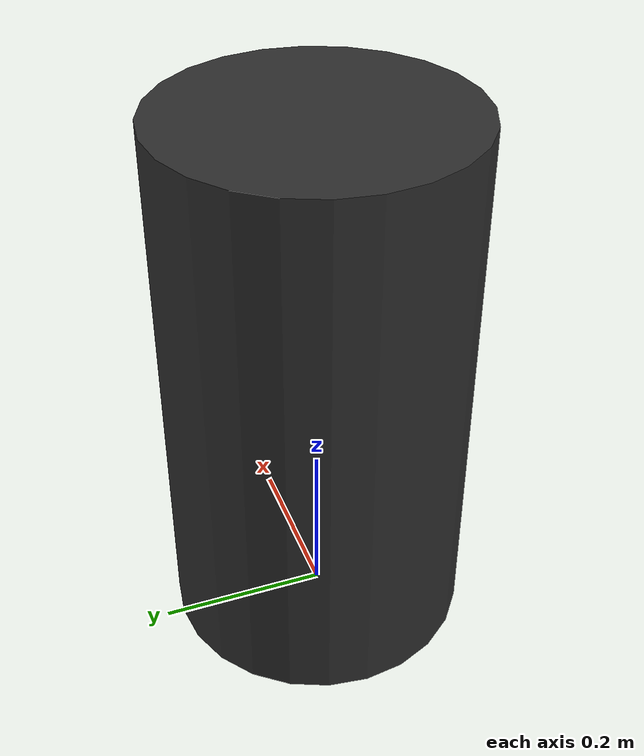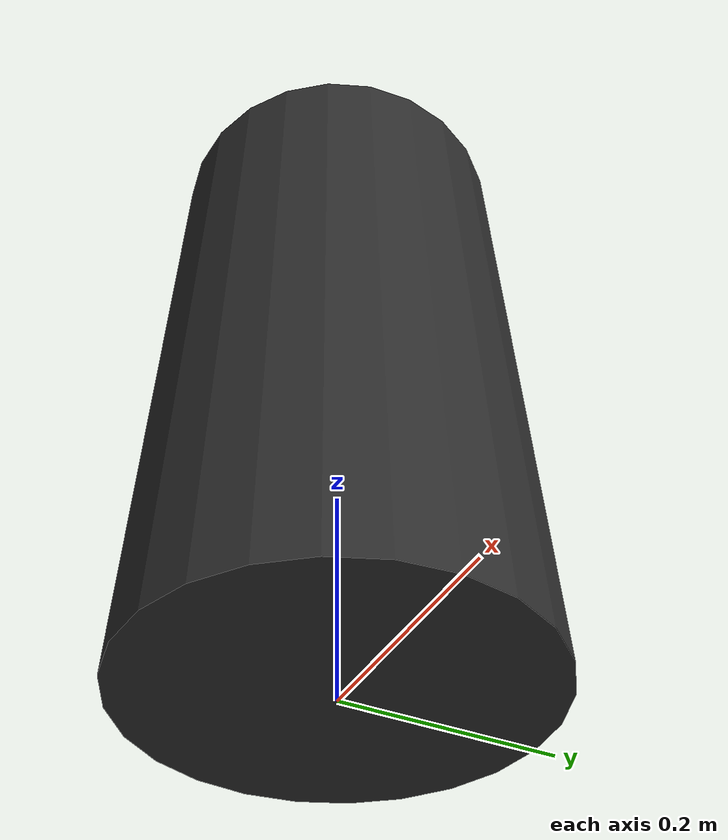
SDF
<?xml version="1.0"?>
<sdf version="1.6">
  <model name="first_2015_trash_can">
    <static>true</static>
    <link name="link">
      <pose>0 0 0.325 0 0 0</pose>
      <collision name="collision">
        <geometry><cylinder><radius>0.18</radius><length>0.65</length></cylinder></geometry>
      </collision>
      <visual name="visual">
        <geometry><cylinder><radius>0.18</radius><length>0.65</length></cylinder></geometry>
        <material><ambient>0.10 0.10 0.10 1</ambient><diffuse>0.18 0.18 0.18 1</diffuse></material>
      </visual>
    </link>
  </model>
</sdf>
